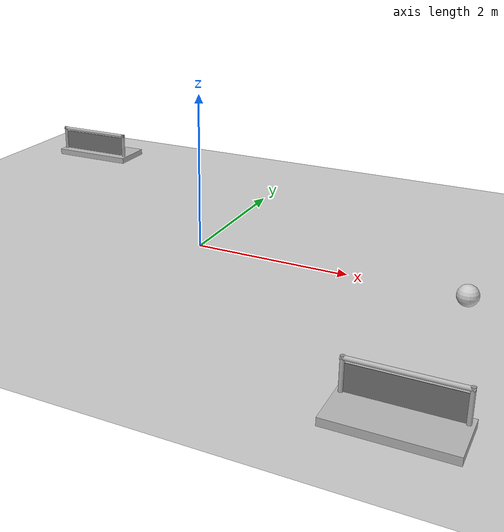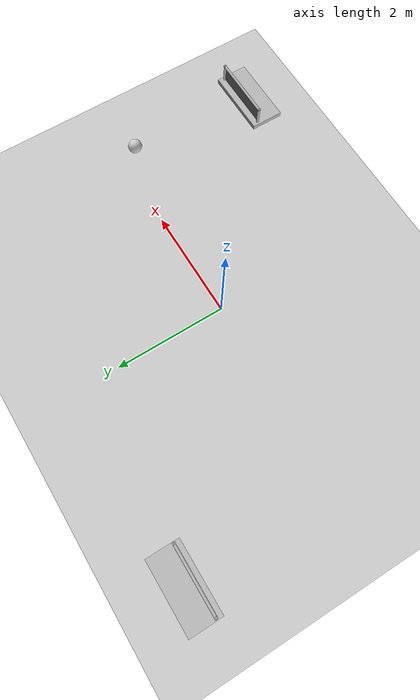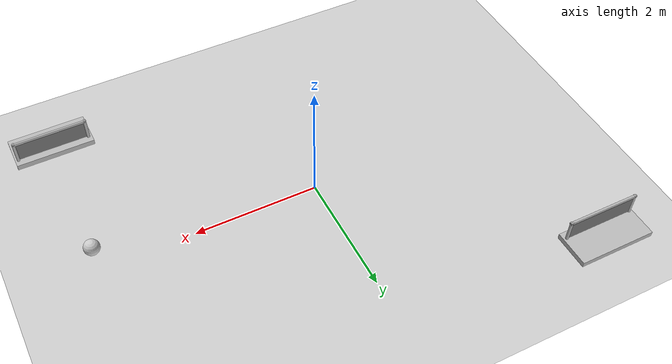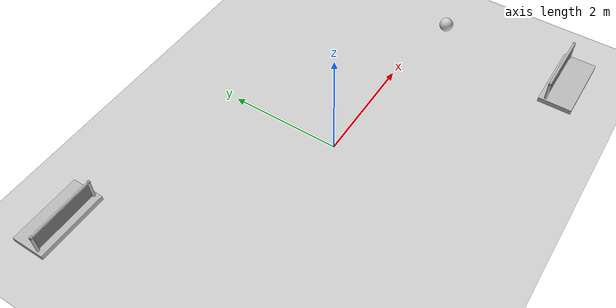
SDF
<sdf version="1.4">
 <world name="default">
  <scene><shadows>0</shadows></scene>
  <include><uri>model://sun</uri></include>
  <include><uri>model://ground_plane</uri></include>
  <include><uri>model://ball</uri><pose>3.49 -0.31 0.197 0 0 0</pose></include>
  <include>
   <name>lowbar1</name>
   <uri>model://frc2016_lowbar</uri>
   <pose>-3.45668 2.8117 -5e-06 0 0 0</pose>
  </include>
  <include>
   <name>lowbar2</name>
   <uri>model://frc2016_lowbar</uri>
   <pose>3.41393 -2.7633 0.005428 2.4e-05 -0 -3.13834</pose>
  </include>
 </world>
</sdf>

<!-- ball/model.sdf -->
<sdf version="1.5">
  <model name="ball">
    <link name="link">
      <inertial>
        <mass>0.213</mass>
        <inertia>
          <ixx>0.003226667</ixx>
          <ixy>0</ixy>
          <ixz>0</ixz>
          <iyy>0.003226667</iyy>
          <iyz>0</iyz>
          <izz>0.003226667</izz>
        </inertia>
      </inertial>

      <visual name="visual">
       <material>
          <ambient>0.8 0.8 0.8 1</ambient>
          <diffuse>0.8 0.8 0.8 1</diffuse>
        </material>
        <geometry>
          <sphere>
            <radius>0.127</radius>
          </sphere>
        </geometry>
      </visual>

      <collision name="collision">
        <geometry>
          <sphere>
            <radius>0.127</radius>
          </sphere>
        </geometry>
		<surface>
		  <friction>
			<ode>
			  <mu>2</mu>
			  <mu2>2</mu2>
			</ode>
		  </friction>
		  <contact>
			<ode>
			  <max_vel>0.1</max_vel>
			  <soft_cfm>0.8</soft_cfm>
			  <soft_erp>0.8</soft_erp>
			  <kd>200</kd>
			  <kp>50000</kp>
			  <min_depth>0.0001</min_depth>
			</ode>
		  </contact>
		</surface>
     </collision>
    </link>
  </model>
</sdf>

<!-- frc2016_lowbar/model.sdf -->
<sdf version="1.5">
  <model name="frc2016_lowbar">
    <link name='base'>
        <inertial>
          <mass>50</mass>
          <inertia>
            <ixx>0.035543</ixx>
            <ixy>0</ixy>
            <ixz>0</ixz>
            <iyy>0.134412</iyy>
            <iyz>0</iyz>
            <izz>0.165376</izz>
          </inertia>
        </inertial>
        <visual name='platform'>
          <pose frame=''>0 0 0.039065 0 -0 0</pose>
          <geometry>
            <box>
             <size>1.27 0.60 0.089</size>
            </box>
          </geometry>
        </visual>
        <collision name='platform'>
          <pose frame=''>0 0 0.039065 0 -0 0</pose>
          <geometry>
            <box>
              <size>1.27 0.60 0.089</size>
            </box>
          </geometry>
          <max_contacts>10</max_contacts>
          <surface>
            <contact>
              <ode/>
            </contact>
            <bounce/>
            <friction>
              <ode/>
            </friction>
          </surface>
        </collision>
        <visual name='right_column'>
          <pose frame=''>-0.57845 -0.18464 0.26863 0 -0 0</pose>
          <geometry>
            <cylinder>
              <radius>0.0254</radius>
              <length>0.381</length>
            </cylinder>
          </geometry>
        </visual>
        <collision name='right_column'>
          <pose frame=''>-0.57845 -0.18464 0.26863 0 -0 0</pose>
          <geometry>
            <cylinder>
              <radius>0.0254</radius>
              <length>0.381</length>
            </cylinder>
          </geometry>
          <max_contacts>10</max_contacts>
          <surface>
            <contact>
              <ode/>
            </contact>
            <bounce/>
            <friction>
              <ode/>
            </friction>
          </surface>
        </collision>
        <visual name='left_column'>
          <pose frame=''>0.57845 -0.18464 0.26863 0 -0 0</pose>
          <geometry>
            <cylinder>
              <radius>0.0254</radius>
              <length>0.381</length>
            </cylinder>
          </geometry>
        </visual>
        <collision name='left_column'>
          <pose frame=''>0.57845 -0.18464 0.26863 0 -0 0</pose>
          <geometry>
            <cylinder>
              <radius>0.0254</radius>
              <length>0.381</length>
            </cylinder>
          </geometry>
          <max_contacts>10</max_contacts>
          <surface>
            <contact>
              <ode/>
            </contact>
            <bounce/>
            <friction>
              <ode/>
            </friction>
          </surface>
        </collision>
        <visual name='horizontal'>
          <pose frame=''>0 -0.18464 0.43556 0 1.5707 0</pose>
          <geometry>
            <cylinder>
              <radius>0.0254</radius>
              <length>1.2018</length>
            </cylinder>
          </geometry>
        </visual>
        <collision name='horizontal'>
          <pose frame=''>0 -0.18464 0.43556 0 1.5707 0</pose>
          <geometry>
            <cylinder>
              <radius>0.0254</radius>
              <length>1.2018</length>
            </cylinder>
          </geometry>
          <max_contacts>10</max_contacts>
          <surface>
            <contact>
              <ode/>
            </contact>
            <bounce/>
            <friction>
              <ode/>
            </friction>
          </surface>
        </collision>
        <self_collide>0</self_collide>
        <kinematic>0</kinematic>
        <gravity>1</gravity>
      </link>
      <link name='wall'>
        <pose frame=''>0 -0.1778 0.24323 0 -0 0</pose>
        <inertial>
          <mass>1</mass>
          <inertia>
            <ixx>0.00774528</ixx>
            <ixy>0</ixy>
            <ixz>0</ixz>
            <iyy>0.116613</iyy>
            <iyz>0</iyz>
            <izz>0.108874</izz>
          </inertia>
        </inertial>
        <visual name='visual'>
          <geometry>
            <box>
              <size>1.1176 0.00635 0.3</size>
            </box>
          </geometry>
          <material>
            <ambient>0.46 0.46 0.46 1</ambient>
            <diffuse>0.46 0.46 0.46 1</diffuse>
          </material>
        </visual>
        <collision name='collision'>
          <geometry>
            <box>
              <size>1.143 0.00635 0.3</size>
            </box>
          </geometry>
          <max_contacts>10</max_contacts>
          <surface>
            <contact>
              <ode/>
            </contact>
            <bounce/>
            <friction>
              <ode/>
            </friction>
          </surface>
        </collision>
        <self_collide>0</self_collide>
        <kinematic>0</kinematic>
        <gravity>1</gravity>
      </link>
      <joint name='bar_joint' type='revolute'>
        <pose frame=''>0 0 0.36378 0 -0 0</pose>
        <parent>base</parent>
        <child>wall</child>
        <axis>
          <xyz>1 0 0</xyz>
          <limit>
            <lower>-1.5707</lower>
            <upper>1.5707</upper>
          </limit>
          <use_parent_model_frame>0</use_parent_model_frame>
          <dynamics>
            <damping>1</damping>
            <friction>1</friction>
            <spring_reference>0</spring_reference>
            <spring_stiffness>0</spring_stiffness>
          </dynamics>
        </axis>
      </joint>
  </model>
</sdf>
